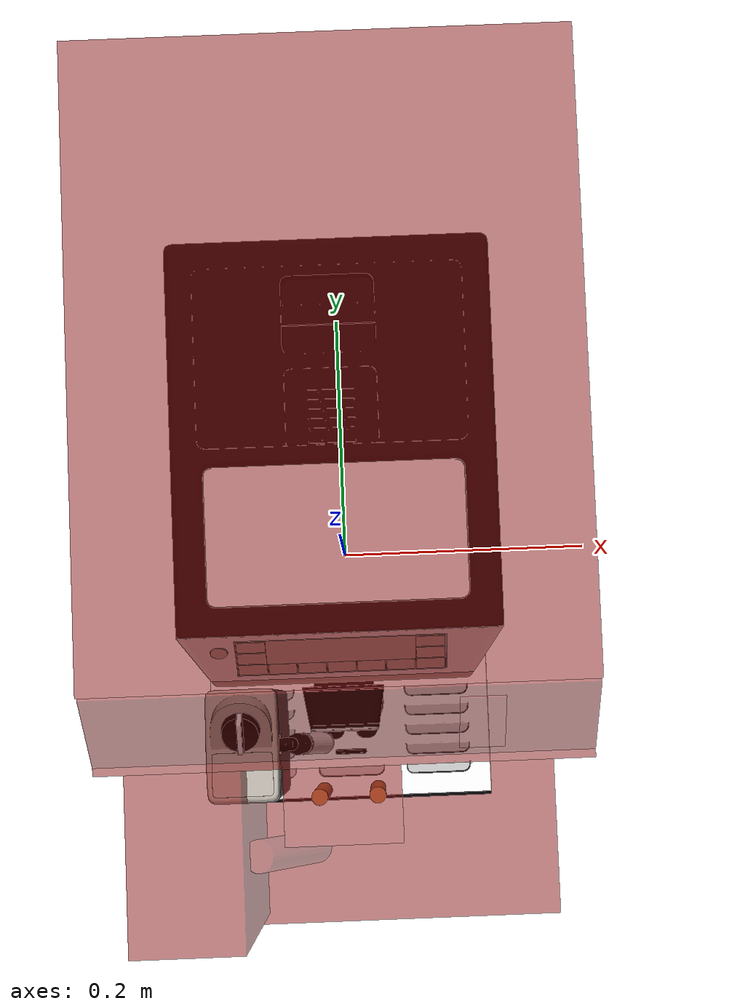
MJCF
<mujoco model="model">
  <compiler angle="radian" />
  <asset>
    <texture file="visuals/material_0.png" name="tex-model" type="2d" />
    <texture type="2d" name="image3" file="visuals/image3.png" />
    <texture type="2d" name="image0" file="visuals/image0.png" />
    <texture type="2d" name="image8" file="visuals/image8.png" />
    <texture type="2d" name="image1" file="visuals/image1.png" />
    <texture type="2d" name="image6" file="visuals/image6.png" />
    <texture type="2d" name="image10" file="visuals/image10.png" />
    <texture type="2d" name="image12" file="visuals/image12.png" />
    <material name="model" reflectance="0.5" texrepeat="1 1" texture="tex-model" texuniform="false" />
    <material name="Black_Plastic" specular="0.5" shininess="0.774400005" rgba="0.000000 0.000000 0.000000 1.0" />
    <material name="White_Plastic" specular="0.5" shininess="0.774400005" rgba="0.552941 0.552941 0.552941 1.0" />
    <material name="back" texture="image3" specular="0.5" shininess="0.774400005" />
    <material name="cap_milk" texture="image0" specular="0.5" shininess="0.774400005" />
    <material name="cap_milk_alu" texture="image8" specular="0.5" shininess="0.25" />
    <material name="front_panel" texture="image1" specular="0.5" shininess="0.809999997" />
    <material name="front_panel_2" texture="image6" specular="0.5" shininess="0.774400005" />
    <material name="front_panel_display" texture="image10" specular="0.5" shininess="0.774400005" />
    <material name="glass" specular="0.5" shininess="0.809999997" rgba="0.549020 0.549020 0.549020 1.0" />
    <material name="logo" texture="image12" specular="0.5" shininess="0.25" />
    <material name="material" specular="0.5" shininess="0.809999997" rgba="1.000000 1.000000 1.000000 1.0" />
    <material name="panel_trims" specular="0.5" shininess="0.809999997" rgba="1.000000 1.000000 1.000000 1.0" />
    <material name="top_panel_alu" specular="0.5" shininess="0.809999997" rgba="1.000000 1.000000 1.000000 1.0" />
    <mesh file="visuals/model_0.obj" name="model_0_vis" scale="0.40000 0.40000 0.40000" />
    <mesh file="visuals/model_1.obj" name="model_1_vis" scale="0.40000 0.40000 0.40000" />
    <mesh file="visuals/model_2.obj" name="model_2_vis" scale="0.40000 0.40000 0.40000" />
    <mesh file="visuals/model_3.obj" name="model_3_vis" scale="0.40000 0.40000 0.40000" />
    <mesh file="visuals/model_4.obj" name="model_4_vis" scale="0.40000 0.40000 0.40000" />
    <mesh file="visuals/model_5.obj" name="model_5_vis" scale="0.40000 0.40000 0.40000" />
    <mesh file="visuals/model_6.obj" name="model_6_vis" scale="0.40000 0.40000 0.40000" />
    <mesh file="visuals/model_7.obj" name="model_7_vis" scale="0.40000 0.40000 0.40000" />
    <mesh file="visuals/model_8.obj" name="model_8_vis" scale="0.40000 0.40000 0.40000" />
    <mesh file="visuals/model_9.obj" name="model_9_vis" scale="0.40000 0.40000 0.40000" />
    <mesh file="visuals/model_10.obj" name="model_10_vis" scale="0.40000 0.40000 0.40000" />
    <mesh file="visuals/model_11.obj" name="model_11_vis" scale="0.40000 0.40000 0.40000" />
    <mesh file="visuals/model_12.obj" name="model_12_vis" scale="0.40000 0.40000 0.40000" />
  </asset>
  <default>
    <default class="visual">
      <geom conaffinity="0" contype="0" group="1" type="mesh" />
    </default>
    <default class="collision">
      <geom group="0" rgba="0.5 0 0 0.5" />
    </default>
    <default class="keypoint">
        <site type="sphere" size="0.01" group="3" rgba="1 0 0 1" />
    </default>
    <default class="placepoint">
      <site type="sphere" size="0.01" group="2" rgba="0 0 1 0"/>
    </default>
  </default>
  <worldbody>
      <site class="keypoint" pos="0.06000 -0.30000 0.0300" name="int_px" />
      <site class="keypoint" pos="-0.06000 -0.15000 0.0300" name="int_py" />
      <site class="keypoint" pos="-0.06000 -0.30000 0.15000" name="int_pz" />
  <body>
      <site rgba="0 0 0 0" size="0.005" pos="0 0 -0.20" name="bottom_site" />
      <site rgba="0 0 0 0" size="0.005" pos="0 0 0.20" name="top_site" />
      <site rgba="0 0 0 0" size="0.005" pos="0.10 0.10 0" name="horizontal_radius_site" />
      <body name="object" pos="0.00000 0.00000 0.22200">
        <geom solimp="0.998 0.998 0.001" solref="0.001 1" density="100" friction="0.95 0.3 0.1" type="mesh" mesh="model_0_vis" material="back" class="visual" />
        <geom solimp="0.998 0.998 0.001" solref="0.001 1" density="100" friction="0.95 0.3 0.1" type="mesh" mesh="model_1_vis" material="White_Plastic" class="visual" />
        <geom solimp="0.998 0.998 0.001" solref="0.001 1" density="100" friction="0.95 0.3 0.1" type="mesh" mesh="model_2_vis" material="logo" class="visual" />
        <geom solimp="0.998 0.998 0.001" solref="0.001 1" density="100" friction="0.95 0.3 0.1" type="mesh" mesh="model_3_vis" material="panel_trims" class="visual" />
        <geom solimp="0.998 0.998 0.001" solref="0.001 1" density="100" friction="0.95 0.3 0.1" type="mesh" mesh="model_4_vis" material="front_panel_display" class="visual" />
        <geom solimp="0.998 0.998 0.001" solref="0.001 1" density="100" friction="0.95 0.3 0.1" type="mesh" mesh="model_5_vis" material="cap_milk_alu" class="visual" />
        <geom solimp="0.998 0.998 0.001" solref="0.001 1" density="100" friction="0.95 0.3 0.1" type="mesh" mesh="model_6_vis" material="top_panel_alu" class="visual" />
        <geom solimp="0.998 0.998 0.001" solref="0.001 1" density="100" friction="0.95 0.3 0.1" type="mesh" mesh="model_7_vis" material="material" class="visual" />
        <geom solimp="0.998 0.998 0.001" solref="0.001 1" density="100" friction="0.95 0.3 0.1" type="mesh" mesh="model_8_vis" material="front_panel_2" class="visual" />
        <geom solimp="0.998 0.998 0.001" solref="0.001 1" density="100" friction="0.95 0.3 0.1" type="mesh" mesh="model_9_vis" material="front_panel" class="visual" />
        <geom solimp="0.998 0.998 0.001" solref="0.001 1" density="100" friction="0.95 0.3 0.1" type="mesh" mesh="model_10_vis" material="glass" class="visual" />
        <geom solimp="0.998 0.998 0.001" solref="0.001 1" density="100" friction="0.95 0.3 0.1" type="mesh" mesh="model_11_vis" material="cap_milk" class="visual" />
        <geom solimp="0.998 0.998 0.001" solref="0.001 1" density="100" friction="0.95 0.3 0.1" type="mesh" mesh="model_12_vis" material="Black_Plastic" class="visual" />

        <geom class="collision" type="box" pos="0.00000 0.09180 0.00000" size="0.16350 0.20820 0.22736" />

        <geom class="collision" type="box" pos="0.00000 -0.12300 -0.03000" size="0.16350 0.02460 0.19200" axisangle="1 0 0 0.10" />

        <geom class="collision" type="box" pos="0.00000 -0.12120 0.17220" size="0.16350 0.02460 0.03900" axisangle="1 0 0 -0.63" />

        <geom class="collision" type="box" pos="0.08970 -0.14070 0.18810" size="0.01470 0.00060 0.02700" axisangle="1 0 0 -0.63" name="start_button" />

        <geom class="collision" type="box" pos="-0.00240 -0.18000 0.03900" size="0.03960 0.03900 0.08820" />

        <geom class="collision" type="box" pos="-0.11100 -0.22860 -0.03900" size="0.03960 0.06300 0.14400" />

        <geom class="collision" type="cylinder" pos="-0.04584 -0.23040 0.00000" size="0.01200 0.04560" axisangle="0 1 0 -0.44" />

        <geom class="collision" type="box" pos="0.00000 -0.21000 -0.19860" size="0.16350 0.09000 0.02700" />
        <site class="placepoint" pos="0.01500 -0.21600 -0.1100" name="receptacle_place_site" />
        <site rgba="0.8 0.5 0.25 1" size="0.006 0.13" pos="-0.02160 -0.19200 -0.12000" type="cylinder" name="coffee_liquid_left" />
        <site rgba="0.8 0.5 0.25 1" size="0.006 0.13" pos="0.02040 -0.19200 -0.12000" type="cylinder" name="coffee_liquid_right" />

      </body>
      </body>
  </worldbody>
</mujoco>
